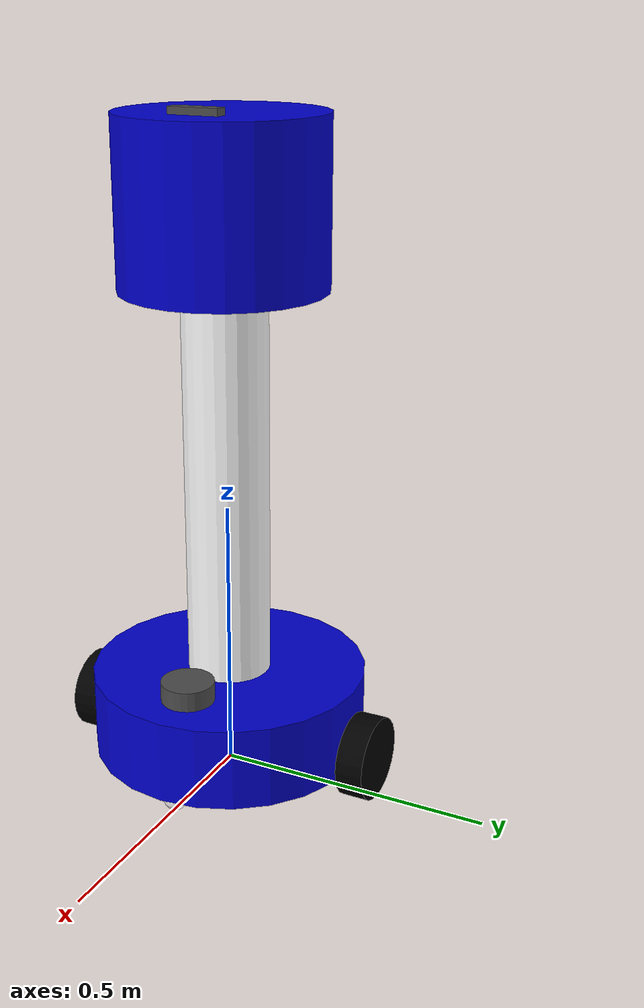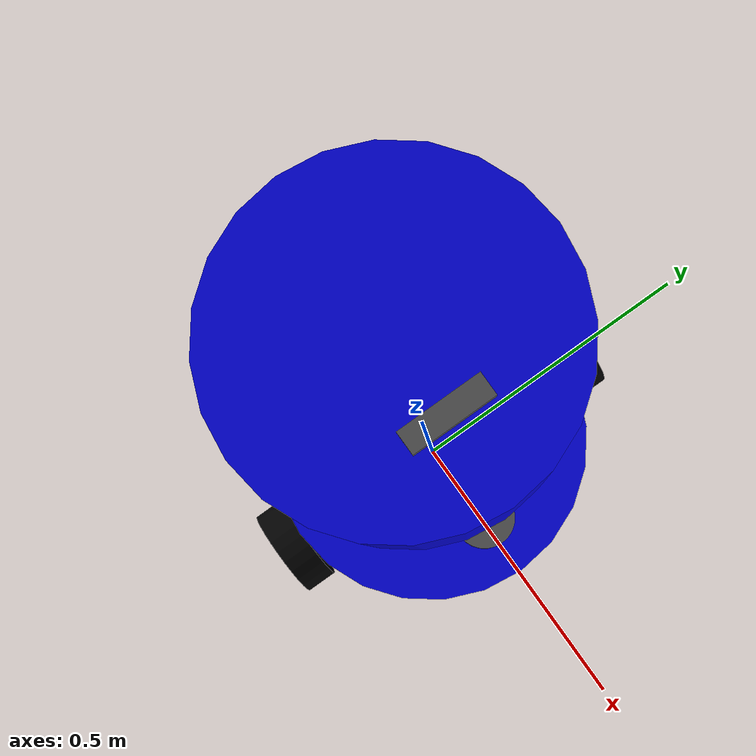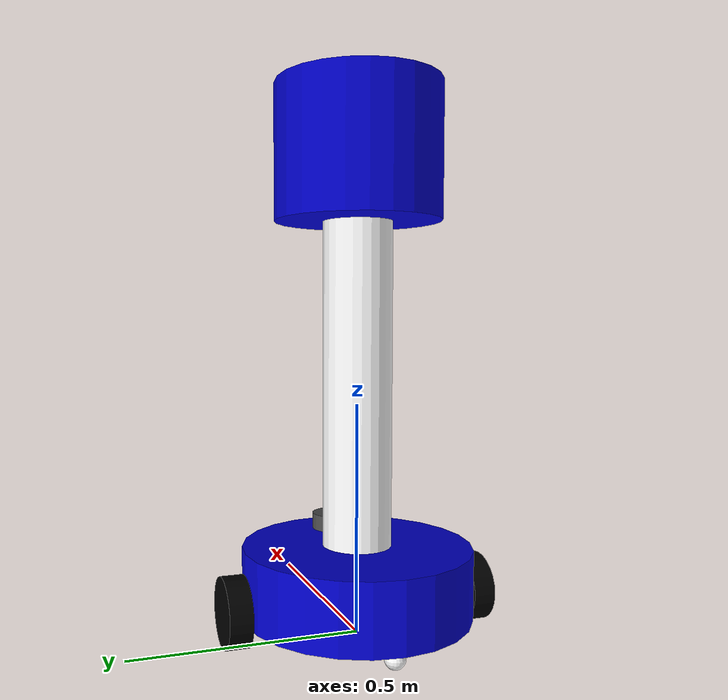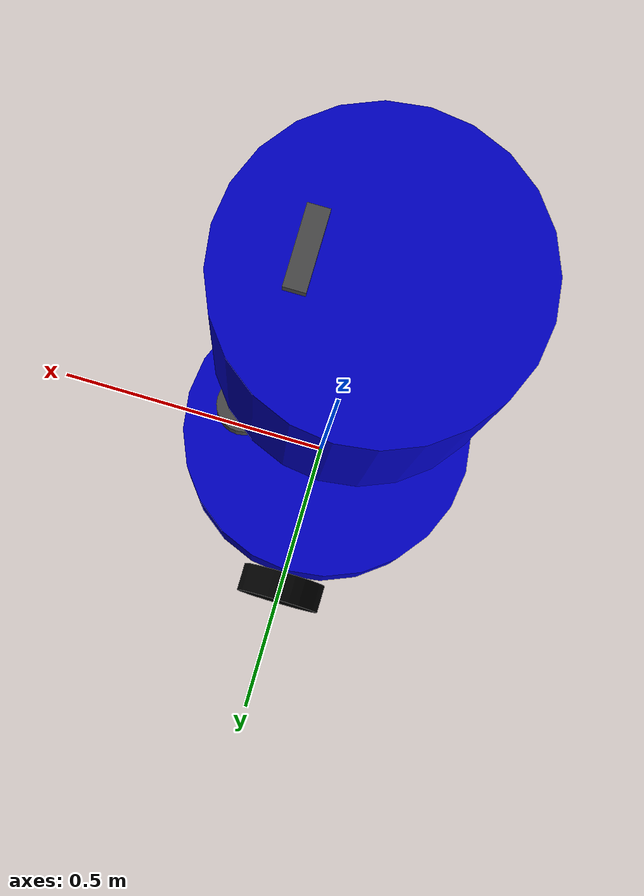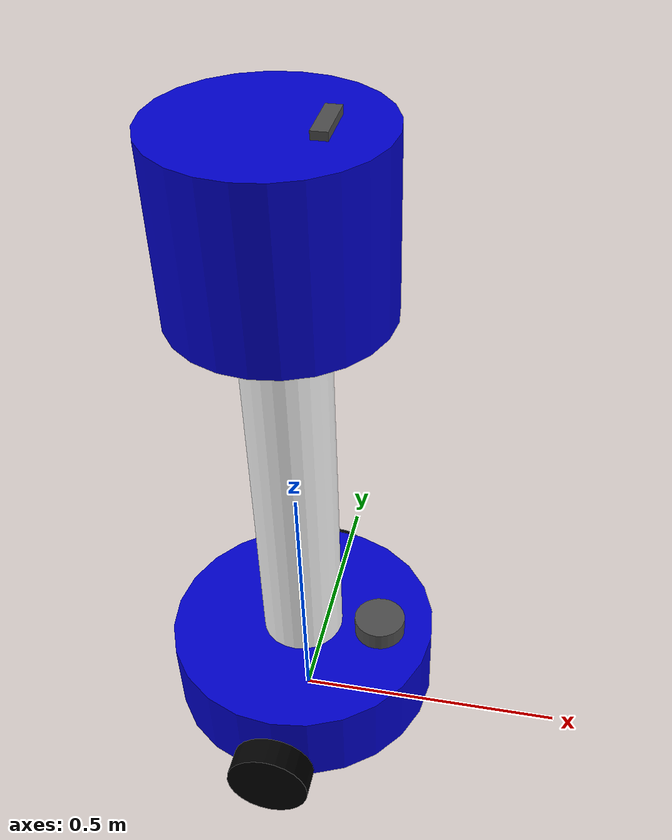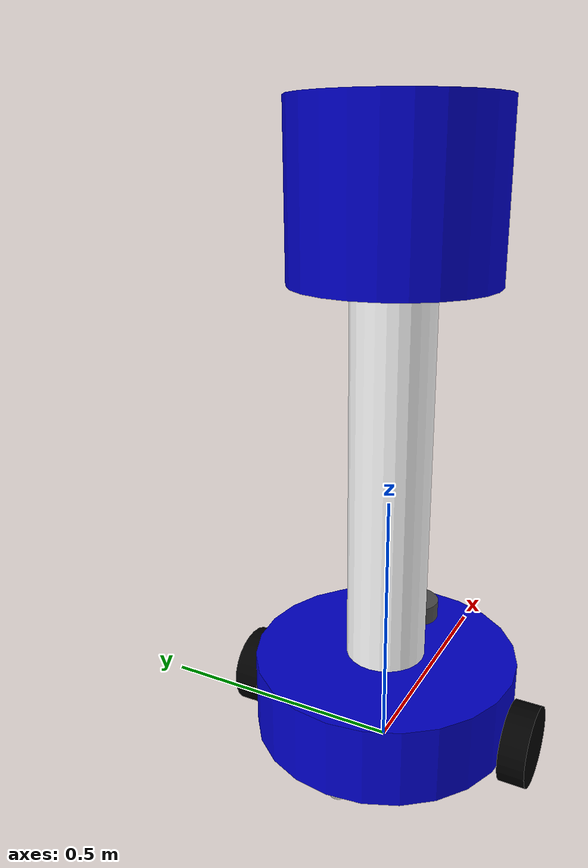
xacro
<?xml version="1.0"?>
<robot name="nova_robot" xmlns:xacro="http://ros.org/wiki/xacro">

  <!-- Include structure -->
  <xacro:include filename="$(find nova_bot_description)/urdf/nova_robot_base.xacro"/>

  <!-- Include Gazebo plugins -->
  <xacro:include filename="$(find nova_bot_description)/urdf/nova_robot_gazebo.xacro"/>

</robot>

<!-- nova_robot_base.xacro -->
<robot name="nova_robot" xmlns:xacro="http://ros.org/wiki/xacro">

  <!-- Init colour -->
  <material name="black">
      <color rgba="0.0 0.0 0.0 1.0"/>
  </material>

  <material name="dark">
    <color rgba="0.3 0.3 0.3 1.0"/>
  </material>

  <material name="light_black">
    <color rgba="0.4 0.4 0.4 1.0"/>
  </material>

  <material name="blue">
    <color rgba="0.0 0.0 0.8 1.0"/>
  </material>

  <material name="green">
    <color rgba="0.0 0.8 0.0 1.0"/>
  </material>

  <material name="grey">
    <color rgba="0.5 0.5 0.5 1.0"/>
  </material>

  <material name="orange">
    <color rgba="1.0 0.4235 0.0392 1.0"/>
  </material>

  <material name="brown">
    <color rgba="0.8706 0.8118 0.7647 1.0"/>
  </material>

  <material name="red">
    <color rgba="0.8 0.0 0.0 1.0"/>
  </material>

  <material name="white">
    <color rgba="1.0 1.0 1.0 1.0"/>
  </material>

  <!-- ==================== BASE ==================== -->

  <link name="base_footprint"/>

  <joint name="base_joint" type="fixed">
    <parent link="base_footprint"/>
    <child link="base_link"/>
    <!-- z=0.044 so caster diameter (0.044) bridges base bottom to ground -->
    <origin xyz="0 0 0.044" rpy="0 0 0"/>
  </joint>

  <link name="base_link">
    <visual>
      <origin xyz="0 0 ${0.15/2}" rpy="0 0 0"/>
      <geometry>
        <cylinder radius="0.25" length="0.15"/>
      </geometry>
      <material name="blue"/>
    </visual>
    <collision>
      <origin xyz="0 0 ${0.15/2}" rpy="0 0 0"/>
      <geometry>
        <cylinder radius="0.25" length="0.15"/>
      </geometry>
    </collision>
    <inertial>
      <origin xyz="0 0 0" rpy="0 0 0"/>
      <mass value="8.0"/>
      <!-- m=8, r=0.25, l=0.15: ixx=iyy=m(3r²+l²)/12, izz=mr²/2 -->
      <inertia ixx="0.14" ixy="0.0" ixz="0.0"
              iyy="0.14" iyz="0.0"
              izz="0.25"/>
    </inertial>
  </link>

  <!-- ==================== WHEELS ==================== -->

  <!--
    base_link origin at z=0.044 from ground.
    Wheel radius = 0.075 → wheel center must be at z=0.075 from ground.
    Joint Z = 0.075 - 0.044 = 0.031
  -->
  <joint name="wheel_left_joint" type="continuous">
    <parent link="base_link"/>
    <child link="wheel_left_link"/>
    <origin xyz="0.0 ${0.25 + 0.026} 0.031" rpy="${-pi/2} 0 0"/>
    <axis xyz="0 0 1"/>
  </joint>

  <link name="wheel_left_link">
    <visual>
      <origin xyz="0 0 0" rpy="0 0 0"/>
      <geometry>
        <cylinder length="0.050" radius="0.075"/>
      </geometry>
      <material name="black"/>
    </visual>
    <collision>
      <origin xyz="0 0 0" rpy="0 0 0"/>
      <geometry>
        <cylinder length="0.050" radius="0.075"/>
      </geometry>
    </collision>
    <inertial>
      <origin xyz="0 0 0"/>
      <mass value="0.5"/>
      <!-- m=0.5, r=0.075, l=0.05: ixx=izz=m(3r²+l²)/12, iyy=mr²/2 -->
      <inertia ixx="0.000807" ixy="0" ixz="0"
              iyy="0.001406" iyz="0"
              izz="0.000807"/>
    </inertial>
  </link>

  <joint name="wheel_right_joint" type="continuous">
    <parent link="base_link"/>
    <child link="wheel_right_link"/>
    <origin xyz="0.0 -${0.25 + 0.026} 0.031" rpy="${-pi/2} 0 0"/>
    <axis xyz="0 0 1"/>
  </joint>

  <link name="wheel_right_link">
    <visual>
      <origin xyz="0 0 0" rpy="0 0 0"/>
      <geometry>
        <cylinder length="0.050" radius="0.075"/>
      </geometry>
      <material name="black"/>
    </visual>
    <collision>
      <origin xyz="0 0 0" rpy="0 0 0"/>
      <geometry>
        <cylinder length="0.050" radius="0.075"/>
      </geometry>
    </collision>
    <inertial>
      <origin xyz="0 0 0"/>
      <mass value="0.5"/>
      <inertia ixx="0.000807" ixy="0" ixz="0"
              iyy="0.001406" iyz="0"
              izz="0.000807"/>
    </inertial>
  </link>

  <!-- ==================== CASTERS ==================== -->

  <joint name="caster_front_joint" type="fixed">
    <parent link="base_link"/>
    <child link="caster_front_link"/>
    <origin xyz="0.20 0.0 -0.022" rpy="0 0 0"/>
  </joint>

  <link name="caster_front_link">
    <visual>
      <origin xyz="0 0 0" rpy="0 0 0"/>
      <geometry>
        <sphere radius="0.022"/>
      </geometry>
      <material name="white"/>
    </visual>
    <collision>
      <origin xyz="0 0 0" rpy="0 0 0"/>
      <geometry>
        <sphere radius="0.022"/>
      </geometry>
    </collision>
    <inertial>
      <origin xyz="0 0 0"/>
      <mass value="0.1"/>
      <!-- sphere: I = 2mr²/5 = 2*0.1*0.022²/5 = 0.0000194 -->
      <inertia ixx="0.0000194" ixy="0.0" ixz="0.0"
              iyy="0.0000194" iyz="0.0"
              izz="0.0000194"/>
    </inertial>
  </link>

  <joint name="caster_back_joint" type="fixed">
    <parent link="base_link"/>
    <child link="caster_back_link"/>
    <origin xyz="-0.20 0.0 -0.022" rpy="0 0 0"/>
  </joint>

  <link name="caster_back_link">
    <visual>
      <origin xyz="0 0 0" rpy="0 0 0"/>
      <geometry>
        <sphere radius="0.022"/>
      </geometry>
      <material name="white"/>
    </visual>
    <collision>
      <origin xyz="0 0 0" rpy="0 0 0"/>
      <geometry>
        <sphere radius="0.022"/>
      </geometry>
    </collision>
    <inertial>
      <origin xyz="0 0 0"/>
      <mass value="0.1"/>
      <inertia ixx="0.0000194" ixy="0.0" ixz="0.0"
              iyy="0.0000194" iyz="0.0"
              izz="0.0000194"/>
    </inertial>
  </link>

  <!-- ==================== IMU ==================== -->

  <joint name="imu_joint" type="fixed">
    <parent link="base_link"/>
    <child link="imu_link"/>
    <origin xyz="0.0 0 0.15" rpy="0 0 0"/>
  </joint>

  <!-- imu_link is intentionally massless/visualless — it's a sensor frame only -->
  <link name="imu_link"/>

  <!-- ==================== LIDAR ==================== -->

  <joint name="scan_joint" type="fixed">
  <parent link="base_link"/>
  <child link="base_scan"/>
  <origin xyz="0.15 0 0.17" rpy="0 0 0"/>
  </joint>

  <link name="base_scan">

    <visual>
      <origin xyz="0 0 ${0.036/2 - 0.02}" rpy="0 0 0"/>
      <geometry>
        <!-- LDS-01: Ø95mm diameter, 36mm height -->
        <cylinder length="0.036" radius="0.0475"/>
      </geometry>
      <material name="dark"/>
    </visual>

    <collision>
      <origin xyz="0 0 ${0.036/2}" rpy="0 0 0"/>
      <geometry>
        <cylinder length="0.036" radius="0.0475"/>
      </geometry>
    </collision>

    <inertial>
      <mass value="0.114"/>
      <origin xyz="0 0 0"/>
      <!-- Solid cylinder: ixx=iyy = m(3r²+h²)/12, izz = mr²/2 -->
      <inertia ixx="0.0000842" ixy="0.0" ixz="0.0"
              iyy="0.0000842" iyz="0.0"
              izz="0.0001287"/>
    </inertial>

  </link>

  <!-- ==================== Central Column ==================== -->

  <joint name="central_column" type="fixed">
    <parent link="base_link"/>
    <child link="central_column" />
    <origin xyz="0 0 ${0.15}" rpy="0 0 0"/>
  </joint>

  <link name="central_column">

    <visual>
      <origin xyz="0 0 ${0.7 / 2}" rpy="0 0 0"/>
      <geometry>
        <cylinder radius = '0.075' length = '0.7'/>
      </geometry>
      <material name="white"/>
    </visual>

    <collision>
      <origin xyz="0 0 ${0.7 / 2}" rpy="0 0 0"/>
      <geometry>
        <cylinder radius = '0.075' length = '0.7'/>
      </geometry>
    </collision>

    <inertial>
      <origin xyz="0 0 0" rpy="0 0 0"/>
      <mass value="2.0"/>
      <inertia ixx="0.084479" ixy="0.0" ixz="0.0"
               iyy="0.084479" iyz="0.0"
               izz="0.005625" />
    </inertial>
  </link>

  <!-- ==================== Upper Body ==================== -->

  <joint name="upper_body" type="fixed">
    <parent link="central_column"/>
    <child link="upper_body" />
    <origin xyz="0 0 ${0.7}" rpy="0 0 0"/>
  </joint>

  <link name="upper_body">

    <visual>
      <origin xyz="0 0 ${0.29 / 2}" rpy="0 0 0"/>
      <geometry>
        <cylinder radius = '0.18' length = '0.29'/>
      </geometry>
      <material name="blue"/>
    </visual>

    <collision>
      <origin xyz="0 0 ${0.29 / 2}" rpy="0 0 0"/>
      <geometry>
        <cylinder radius = '0.18' length = '0.29'/>
      </geometry>
    </collision>

    <inertial>
      <origin xyz="0 0 0" rpy="0 0 0"/>
      <mass value="3.0"/>
      <inertia ixx="0.045330" ixy="0.0" ixz="0.0"
               iyy="0.045330" iyz="0.0"
               izz="0.0486" />
    </inertial>
  </link>

  <!-- ==================== CAMERA ==================== -->

  <joint name="camera_joint" type="fixed">
  <origin xyz="0.08 0 0.29" rpy="0 0 0"/>
  <parent link="upper_body"/>
  <child link="camera_link"/>
  </joint>

  <link name="camera_link">
    <visual>
      <origin xyz="0 0 0" rpy="0 0 0"/>
      <geometry>
        <!-- D435: 90mm wide, 25mm tall, 25mm deep (x=depth, y=width, z=height) -->
        <box size="0.025 0.090 0.025"/>
      </geometry>
      <material name="dark"/>
    </visual>

    <collision>
      <origin xyz="0 0 0" rpy="0 0 0"/>
      <geometry>
        <box size="0.025 0.090 0.025"/>
      </geometry>
    </collision>

    <inertial>
      <mass value="0.072"/>  <!-- D435 actual mass: 72g -->
      <origin xyz="0 0 0"/>
      <inertia ixx="0.000010" ixy="0.0" ixz="0.0"
              iyy="0.000004" iyz="0.0"
              izz="0.000012"/>
    </inertial>
  </link>

  <!-- RGB sensor: -17.44mm from camera_link center along Y -->
  <joint name="camera_rgb_joint" type="fixed">
    <origin xyz="0.000 -0.01744 0.000" rpy="0 0 0"/>
    <parent link="camera_link"/>
    <child link="camera_rgb_frame"/>
  </joint>
  <link name="camera_rgb_frame"/>

  <joint name="camera_rgb_optical_joint" type="fixed">
    <origin xyz="0 0 0" rpy="${-pi/2} 0 ${-pi/2}"/>
    <parent link="camera_rgb_frame"/>
    <child link="camera_rgb_optical_frame"/>
  </joint>
  <link name="camera_rgb_optical_frame"/>

  <!-- Depth reference (left IR): +14.74mm from camera_link center along Y -->
  <joint name="camera_depth_joint" type="fixed">
    <origin xyz="0.000 0.01474 0.000" rpy="0 0 0"/>
    <parent link="camera_link"/>
    <child link="camera_depth_frame"/>
  </joint>
  <link name="camera_depth_frame"/>

  <joint name="camera_depth_optical_joint" type="fixed">
    <origin xyz="0 0 0" rpy="${-pi/2} 0 ${-pi/2}"/>
    <parent link="camera_depth_frame"/>
    <child link="camera_depth_optical_frame"/>
  </joint>
  <link name="camera_depth_optical_frame"/>

</robot>
